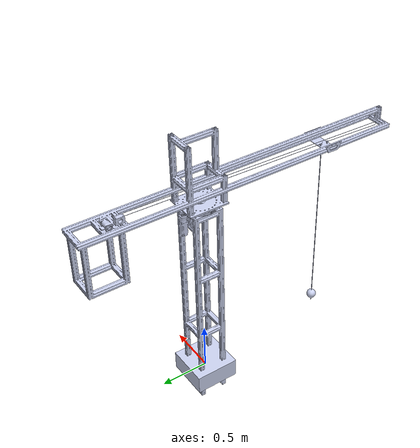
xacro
<?xml version="1.0"?>
<robot xmlns:xacro="http://www.ros.org/wiki/xacro" name="tower_crane">
    <xacro:arg name="initial_positions_file" default="initial_positions.yaml" />

    <!-- Import tower_crane URDF file -->
    <!-- Note: xacro supports $(find package_name) via its own 'find' substitution command. -->
    <xacro:include filename="$(find tower_crane)/urdf/Tower_crane.urdf" />

    <!-- Import control_xacro -->
    <xacro:include filename="tower_crane.ros2_control.xacro" />

    <xacro:tower_crane_ros2_control name="FakeSystem" initial_positions_file="$(arg initial_positions_file)"/>

</robot>

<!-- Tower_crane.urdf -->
<robot
  name="tower_crane">
  <link name="world"/>
  <joint name="world_to_base" type="fixed">
    <parent link="world"/>
    <child link="base_base_link"/>
    <origin rpy="0 0 0" xyz="0 0 0"/>
  </joint>
  <link name="base_base_link">
    <visual>
      <geometry>
        <box size="0.45 0.45 0.2"/>
      </geometry>
      <material name="">
        <color rgba="0.79216 0.81961 0.93333 1"/>
      </material>
    </visual>
  </link>
  <joint name="base_to_base" type="fixed">
    <parent link="base_base_link"/>
    <child link="base_link"/>
    <origin xyz="0 0 2" rpy="0 0 0"/>
  </joint>
  <link
    name="base_link">
    <inertial>
      <origin
        xyz="-0.00054365 0.0005699 -0.90918"
        rpy="0 0 0" />
      <mass
        value="24.622" />
      <inertia
        ixx="12.76"
        ixy="0"
        ixz="0.01"
        iyy="12.75"
        iyz="-0.04"
        izz="0.70" />
    </inertial>
    <visual>
      <origin
        xyz="0 0 0"
        rpy="0 0 0" />
      <geometry>
        <mesh
          filename="package://tower_crane/meshes/base_link.STL" />
      </geometry>
      <material
        name="">
        <color
          rgba="0.79216 0.81961 0.93333 1" />
      </material>
    </visual>
    <collision>
      <origin
        xyz="0 0 0"
        rpy="0 0 0" />
      <geometry>
        <mesh
          filename="package://tower_crane/meshes/base_link.STL" />
      </geometry>
    </collision>
  </link>
  <link
    name="slewing_Link">
    <inertial>
      <origin
        xyz="-0.000744911036835383 -0.0874649854532076 0.14613338637878"
        rpy="0 0 0" />
      <mass
        value="38.2285461245108" />
      <inertia
        ixx=" 32.67"
        ixy="0.03"
        ixz="0.00"
        iyy="2.25"
        iyz="2.79"
        izz=" 31.30" />
    </inertial>
    <visual>
      <origin
        xyz="0 0 0"
        rpy="0 0 0" />
      <geometry>
        <mesh
          filename="package://tower_crane/meshes/slewing_Link.STL" />
      </geometry>
      <material
        name="">
        <color
          rgba="0.792156862745098 0.819607843137255 0.933333333333333 1" />
      </material>
    </visual>
    <collision>
      <origin
        xyz="0 0 0"
        rpy="0 0 0" />
      <geometry>
        <mesh
          filename="package://tower_crane/meshes/slewing_Link.STL" />
      </geometry>
    </collision>
  </link>
  <joint
    name="slewing_joint"
    type="revolute">
    <origin
      xyz="0 0 0.007"
      rpy="0 0 0" />
    <parent
      link="base_link" />
    <child
      link="slewing_Link" />
    <axis
      xyz="0 0 1" />
    <limit
      lower="-3.14"
      upper="3.14"
      effort="100"
      velocity="0" />
  </joint>
  <link
    name="trolley_Link">
    <inertial>
      <origin
        xyz="-0.00252711686986329 -6.66133814775094E-16 -0.146022586184743"
        rpy="0 0 0" />
      <mass
        value="0.567964273921575" />
      <inertia
        ixx="0.12"
        ixy="0.00"
        ixz="0.00"
        iyy="0.13"
        iyz="0.00"
        izz="0.01" />
    </inertial>
    <visual>
      <origin
        xyz="0 0 0"
        rpy="0 0 0" />
      <geometry>
        <mesh
          filename="package://tower_crane/meshes/trolley_Link.STL" />
      </geometry>
      <material
        name="">
        <color
          rgba="0.792156862745098 0.819607843137255 0.933333333333333 1" />
      </material>
    </visual>
    <collision>
      <origin
        xyz="0 0 0"
        rpy="0 0 0" />
      <geometry>
        <mesh
          filename="package://tower_crane/meshes/trolley_Link.STL" />
      </geometry>
    </collision>
  </link>
  <joint
    name="trolley_joint"
    type="prismatic">
    <origin
      xyz="0.00031802 -1.4078 0.1438"
      rpy="0 0 -3.1416" />
    <parent
      link="slewing_Link" />
    <child
      link="trolley_Link" />
    <axis
      xyz="0 1 0" />
    <limit
      lower="-2"
      upper="0.5"
      effort="20"
      velocity="0.5" />
  </joint>
  <link
    name="hook_Link">
    <inertial>
      <origin
        xyz="0 2.22044604925031E-16 0"
        rpy="0 0 0" />
      <mass
        value="5.0" />
      <inertia
        ixx="0.01"
        ixy="0.00"
        ixz="0.00"
        iyy="0.01"
        iyz="0.00"
        izz="0.01" />
    </inertial>
    <visual>
      <origin
        xyz="0 0 0"
        rpy="0 0 0" />
      <geometry>
        <mesh
          filename="package://tower_crane/meshes/hook_Link.STL" />
      </geometry>
      <material
        name="">
        <color
          rgba="0.792156862745098 0.819607843137255 0.933333333333333 1" />
      </material>
    </visual>
    <collision>
      <origin
        xyz="0 0 0"
        rpy="0 0 0" />
      <geometry>
        <mesh
          filename="package://tower_crane/meshes/hook_Link.STL" />
      </geometry>
    </collision>
  </link>
  <joint
    name="hook_joint"
    type="prismatic">
    <origin
      xyz="-0.013982 0 -1.9126"
      rpy="0 0 3.1416" />
    <parent
      link="trolley_Link" />
    <child
      link="hook_Link" />
    <axis
      xyz="0 0 1" />
    <limit
      lower="0"
      upper="2"
      effort="50"
      velocity="0.5" />
  </joint>

  <ros2_control name="canopen_ros2_control/CanopenSystem" type="system">
    <hardware>
      <plugin>canopen_ros2_control/RobotSystem</plugin>
      <param name="bus_config">/home/qiaoqiaochen/appdata/canros/install/tower_crane/share/tower_crane/config/robot_control/bus.yml</param>
      <param name="master_config">/home/qiaoqiaochen/appdata/canros/install/tower_crane/share/tower_crane/config/robot_control/master.dcf</param>
      <param name="can_interface_name">can0</param>
    </hardware>

    <joint name="slewing_joint">
      <command_interface name="position"/>
      <state_interface name="position"/>
      <state_interface name="velocity"/>
      <param name="device_name">slewing_motor</param>
    </joint>

    <joint name="trolley_joint">
      <command_interface name="position"/>
      <state_interface name="position"/>
      <state_interface name="velocity"/>
      <param name="device_name">trolley_motor</param>
    </joint>

    <joint name="hook_joint">
      <command_interface name="position"/>
      <state_interface name="position"/>
      <state_interface name="velocity"/>
      <param name="device_name">hoist_motor</param>
    </joint>
  </ros2_control>

</robot>
